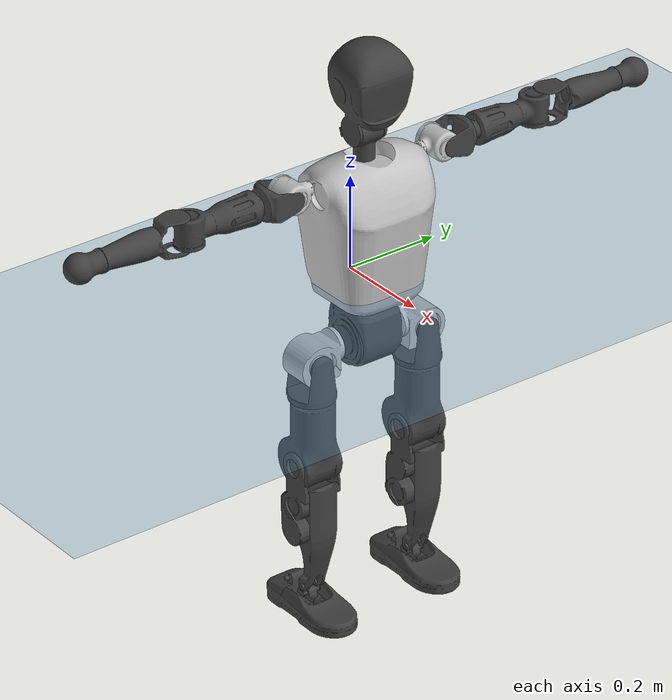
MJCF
<mujoco model="T1">
  <compiler angle="radian" assetdir="assets" balanceinertia="true" inertiafromgeom="false"/>

  <option timestep="0.005" density="1.2" viscosity="2e-05"/>

  <size nkey="1"/>

  <visual>
    <quality shadowsize="8192"/>
    <map shadowclip="0.5"/>
  </visual>

  <default>
    <default class="/">
      <joint armature="0.01" damping="0.01" frictionloss="0.1"/>
      <geom contype="0" conaffinity="0" group="1" solref="-1000 -80"/>
      <site size="0.01 0.005 0.005" group="5"/>
      <general forcelimited="true" biastype="affine" gainprm="25" biasprm="0 -25 -0.6"/>
      <default class="t1">
        <geom rgba="0.25 0.25 0.25 1"/>
        <default class="visual">
          <geom type="mesh" group="2"/>
        </default>
        <default class="collision">
          <geom group="3"/>
        </default>
        <default class="foot">
          <geom size="0.1115 0.05 0.015" type="box" condim="6" group="4" priority="1" solimp="0.015 1 0.015"/>
        </default>
        <default class="reward_collision_sphere">
          <geom group="5" rgba="1 0 0 1"/>
        </default>
      </default>
    </default>
  </default>

  <asset>
    <texture type="skybox" colorspace="auto" name="//unnamed_texture_0" builtin="gradient" rgb1="0.95 0.95 0.95" rgb2="0.95 0.95 0.95" width="100" height="600"/>
    <texture type="2d" colorspace="auto" name="texplane" builtin="checker" rgb1="0.345 0.575 0.748" rgb2="0.345 0.575 0.748" markrgb="1 1 1" width="512" height="512"/>
    <material name="MatPlane" class="/" texture="texplane" texuniform="true" texrepeat="2 2" specular="0.9"/>
    <mesh name="Trunk" class="/" file="Trunk.stl"/>
    <mesh name="H1" class="/" file="H1.stl"/>
    <mesh name="H2" class="/" file="H2.stl"/>
    <mesh name="AL1" class="/" file="AL1.stl"/>
    <mesh name="AL2" class="/" file="AL2.stl"/>
    <mesh name="AL3" class="/" file="AL3.stl"/>
    <mesh name="left_hand_link" class="/" file="left_hand_link.stl"/>
    <mesh name="AR1" class="/" file="AR1.stl"/>
    <mesh name="AR2" class="/" file="AR2.stl"/>
    <mesh name="AR3" class="/" file="AR3.stl"/>
    <mesh name="right_hand_link" class="/" file="right_hand_link.stl"/>
    <mesh name="Waist" class="/" file="Waist.stl"/>
    <mesh name="Hip_Pitch_Left" class="/" file="Hip_Pitch_Left.stl"/>
    <mesh name="Hip_Roll_Left" class="/" file="Hip_Roll_Left.stl"/>
    <mesh name="Hip_Yaw_Left" class="/" file="Hip_Yaw_Left.stl"/>
    <mesh name="Shank_Left" class="/" file="Shank_Left.stl"/>
    <mesh name="Ankle_Cross_Left" class="/" file="Ankle_Cross_Left.stl"/>
    <mesh name="left_foot_link" class="/" file="left_foot_link.stl"/>
    <mesh name="Hip_Pitch_Right" class="/" file="Hip_Pitch_Right.stl"/>
    <mesh name="Hip_Roll_Right" class="/" file="Hip_Roll_Right.stl"/>
    <mesh name="Hip_Yaw_Right" class="/" file="Hip_Yaw_Right.stl"/>
    <mesh name="Shank_Right" class="/" file="Shank_Right.stl"/>
    <mesh name="Ankle_Cross_Right" class="/" file="Ankle_Cross_Right.stl"/>
    <mesh name="right_foot_link" class="/" file="right_foot_link.stl"/>
  </asset>

  <worldbody>
    <geom name="floor" class="/" size="100 100 0.125" type="plane" group="0" material="MatPlane"/>
    <light name="toplight_shadow" class="/" pos="0 0 5" dir="0.0990148 0.0990148 -0.990148" type="directional" ambient="0.04 0.04 0.04" diffuse="0.55 0.55 0.55" specular="0.12 0.12 0.12"/>
    <light name="toplight_fill" class="/" pos="0 0 5" dir="0.0990148 0.0990148 -0.990148" type="directional" castshadow="false" ambient="0.04 0.04 0.04" diffuse="0.3 0.3 0.3" specular="0.08 0.08 0.08"/>
    <body name="trunk" childclass="t1" pos="-5.40152e-05 0.00101858 0.00103413" quat="1 3.54579e-05 -6.88711e-05 7.99229e-06">
      <inertial pos="0.0384202 0.00196901 0.113105" quat="0.999943 -0.000770243 -0.0106833 0.000306699" mass="11.5955" diaginertia="0.0165618 0.204264 0.074996"/>
      <joint name="//unnamed_joint_0" type="free" armature="0" damping="0" frictionloss="0"/>
      <geom name="//unnamed_geom_1" class="visual" rgba="0.76 0.76 0.76 1" mesh="Trunk"/>
      <geom name="//unnamed_geom_2" class="collision" size="0.0745223 0.099363 0.149045" pos="0.04254 0 0.126915" type="box"/>
      <geom name="//unnamed_geom_3" class="reward_collision_sphere" size="0.114267" pos="0.04254 0 0.105763"/>
      <geom name="//unnamed_geom_4" class="reward_collision_sphere" size="0.0149045" pos="0.04254 0.103212 0"/>
      <geom name="//unnamed_geom_5" class="reward_collision_sphere" size="0.0149045" pos="0.04254 -0.103212 0"/>
      <geom name="//unnamed_geom_6" class="reward_collision_sphere" size="0.0149045" pos="0.04254 0.129926 0.190373"/>
      <geom name="//unnamed_geom_7" class="reward_collision_sphere" size="0.0149045" pos="0.04254 -0.129926 0.190373"/>
      <site name="imu" pos="0.000919302 0.00334087 -0.00416101" size="0.0099363"/>
      <camera name="track" pos="0 -2.42853 0" quat="0.707107 0.707107 0 0" mode="trackcom"/>
      <camera name="ego_camera" pos="0.0864981 0 0.444203" quat="-0.5 -0.5 0.5 0.5"/>
      <body name="H1" pos="0.044612 -0.00197582 0.258261" quat="1 -3.43771e-05 6.55422e-05 0.000102387">
        <inertial pos="-0.000787306 0.000592186 0.0608717" quat="0.763137 -0.0206583 0.00664967 0.645872" mass="0.427744" diaginertia="4.22059e-05 0.000578427 0.000200089"/>
        <joint name="AAHead_yaw" pos="0 0 0" axis="-0.00355583 0.00287128 0.99999" stiffness="0.00155609" range="-1.57376 1.53021" armature="0.00978905" damping="0.0157448" frictionloss="0.0869298"/>
        <geom name="//unnamed_geom_8" class="visual" mesh="H1"/>
        <body name="H2" pos="-0.000946987 0.000872806 0.0636131" quat="1 -0.000120641 -1.60397e-05 0.000112831">
          <inertial pos="0.0061814 -0.000871508 0.105349" quat="0.987891 0.112778 -0.0674048 -0.0825185" mass="0.621565" diaginertia="0.00036449 0.00508649 0.0023143"/>
          <joint name="Head_pitch" pos="0 0 0" axis="0.00123329 -0.999996 -0.00265741" range="-1.2285 0.347501" armature="0.00993372" damping="0.0106468" frictionloss="0.0977492"/>
          <geom name="//unnamed_geom_9" class="visual" mesh="H2"/>
          <geom name="//unnamed_geom_10" class="collision" size="0.0794904" pos="0.00709001 0 0.116339"/>
          <geom name="//unnamed_geom_11" class="reward_collision_sphere" size="0.0894267" pos="0.01418 0 0.105763"/>
        </body>
      </body>
      <body name="AL1" pos="0.0413567 0.130245 0.232366" quat="0.999999 0.00044318 0.000526295 -0.00101992">
        <inertial pos="-0.000512973 0.0551388 0.000769526" quat="0.494959 0.498685 -0.506615 0.499671" mass="0.519669" diaginertia="0.000242123 0.00350764 0.00039053"/>
        <joint name="Left_Shoulder_Pitch" pos="0 0 0" axis="-0.00107424 0.999999 0.000131605" stiffness="0.00138976" range="-3.32304 1.25205" armature="0.00994562" damping="0.0144596" frictionloss="0.0999559"/>
        <geom name="//unnamed_geom_12" class="visual" rgba="0.76 0.76 0.76 1" mesh="AL1"/>
        <body name="AL2" pos="0.00108886 0.0595825 -0.000194868" quat="1 5.09689e-05 -3.91729e-05 -5.74003e-06">
          <inertial pos="0.00483658 0.0483366 -0.000409125" quat="0.492555 0.504611 -0.495608 0.50708" mass="0.156523" diaginertia="7.21961e-05 0.000917653 0.000241182"/>
          <joint name="Left_Shoulder_Roll" pos="0 0 0" axis="-1 0.000196701 0.000171056" range="-1.57388 1.7431" armature="0.00939874" damping="0.00881148" frictionloss="0.101672"/>
          <geom name="//unnamed_geom_13" class="visual" mesh="AL2"/>
          <body name="AL3" pos="0.000434686 0.0763652 0.000445019" quat="1 -0.000205771 0.000126376 0.00012296">
            <inertial pos="-0.00237835 0.1041 -0.000161532" quat="0.706082 0.708127 -0.001031 -0.00159938" mass="1.03094" diaginertia="0.00237417 0.0342766 0.000826793"/>
            <joint name="Left_Elbow_Pitch" pos="0 0 0" axis="0.00242336 -0.999995 0.00216789" range="-2.27298 2.31031" armature="0.01009" damping="0.0142647" frictionloss="0.100405"/>
            <geom name="//unnamed_geom_14" class="visual" mesh="AL3"/>
            <geom name="//unnamed_geom_15" class="collision" size="0.0298089 0.0745223" pos="0 0.0607132 0" quat="0.707105 0.707108 0 0" type="cylinder"/>
            <geom name="//unnamed_geom_16" class="reward_collision_sphere" size="0.0357707"/>
            <body name="left_hand_link" pos="-0.000389846 0.181178 -0.00146047" quat="1 -2.64951e-05 -1.50949e-05 2.86957e-05">
              <inertial pos="0.000495411 0.13282 0.00109706" quat="0.710248 0.703943 0.00245285 -0.00243309" mass="0.32043" diaginertia="0.00143396 0.0214412 0.000283293"/>
              <joint name="Left_Elbow_Yaw" pos="0 0 0" axis="-0.00736293 -0.0030926 0.999968" stiffness="0.00661914" range="-2.48615 -0.00873355" armature="0.00994279" damping="0.000107879" frictionloss="0.105444"/>
              <geom name="//unnamed_geom_17" class="visual" mesh="left_hand_link"/>
              <geom name="//unnamed_geom_18" class="collision" size="0.0298089 0.0869426" pos="0 0.157854 0" quat="0.707105 0.707108 0 0" type="cylinder"/>
              <geom name="//unnamed_geom_19" class="reward_collision_sphere" size="0.0496815"/>
              <geom name="//unnamed_geom_20" class="reward_collision_sphere" size="0.0347771" pos="0 0.133569 0"/>
              <geom name="//unnamed_geom_21" class="reward_collision_sphere" size="0.0347771" pos="0 0.261067 0"/>
            </body>
          </body>
        </body>
      </body>
      <body name="AR1" pos="0.0394081 -0.128408 0.231121" quat="1 9.67705e-06 0.000367413 -8.99957e-05">
        <inertial pos="-0.00104047 -0.0545913 -0.00225086" quat="0.5015 0.488649 -0.506951 0.502714" mass="0.524197" diaginertia="0.000241884 0.00334571 0.00038565"/>
        <joint name="Right_Shoulder_Pitch" pos="0 0 0" axis="-0.00439758 -0.99999 -0.000788833" stiffness="0.00628834" range="-1.22866 3.31645" armature="0.0102135" damping="0" frictionloss="0.0879142"/>
        <geom name="//unnamed_geom_22" class="visual" rgba="0.76 0.76 0.76 1" mesh="AR1"/>
        <body name="AR2" pos="-0.00192175 -0.056151 -0.000206271" quat="1 2.9515e-05 1.80636e-05 1.93556e-05">
          <inertial pos="0.002905 -0.0484876 -0.000226182" quat="0.512144 0.495588 -0.504188 0.487746" mass="0.156" diaginertia="7.085e-05 0.000902431 0.000231325"/>
          <joint name="Right_Shoulder_Roll" pos="0 0 0" axis="-0.99999 0.000100613 -0.00452374" stiffness="0.00641216" range="-1.73603 1.5771" armature="0.00993885" damping="0" frictionloss="0.0951764"/>
          <geom name="//unnamed_geom_23" class="visual" mesh="AR2"/>
          <body name="AR3" pos="-0.00114899 -0.0736413 0.00070326" quat="1 -2.0828e-05 5.37474e-06 -1.25635e-05">
            <inertial pos="-0.00131744 -0.104139 0.000534072" quat="0.707008 0.707205 -0.000769913 0.000578257" mass="0.9977" diaginertia="0.00230173 0.0327494 0.000831482"/>
            <joint name="Right_Elbow_Pitch" pos="0 0 0" axis="-0.0033164 0.99999 -0.00298888" range="-2.27662 2.24716" armature="0.00989875" damping="0.00882466" frictionloss="0.0976491"/>
            <geom name="//unnamed_geom_24" class="visual" mesh="AR3"/>
            <geom name="//unnamed_geom_25" class="collision" size="0.0298089 0.0745223" pos="0 -0.0607132 0" quat="0.707105 0.707108 0 0" type="cylinder"/>
            <geom name="//unnamed_geom_26" class="reward_collision_sphere" size="0.0357707"/>
            <body name="right_hand_link" pos="-0.00108074 -0.176896 0.00197677" quat="1 -0.000109526 -0.000168885 0.000139177">
              <inertial pos="-0.000361082 -0.132294 -0.000198528" quat="0.705111 0.709093 0.000787061 -0.00191665" mass="0.323721" diaginertia="0.00144833 0.0212427 0.000285922"/>
              <joint name="Right_Elbow_Yaw" pos="0 0 0" axis="-0.000772266 0.00265035 0.999996" range="0.00429203 2.44385" armature="0.00962051" damping="0.00708537" frictionloss="0.110278"/>
              <geom name="//unnamed_geom_27" class="visual" mesh="right_hand_link"/>
              <geom name="//unnamed_geom_28" class="collision" size="0.0298089 0.0869426" pos="0 -0.157854 0" quat="0.707105 0.707108 0 0" type="cylinder"/>
              <geom name="//unnamed_geom_29" class="reward_collision_sphere" size="0.0496815"/>
              <geom name="//unnamed_geom_30" class="reward_collision_sphere" size="0.0347771" pos="0 -0.133569 0"/>
              <geom name="//unnamed_geom_31" class="reward_collision_sphere" size="0.0347771" pos="0 -0.261067 0"/>
            </body>
          </body>
        </body>
      </body>
      <body name="Waist" pos="0.0441208 0.000399446 -0.124079" quat="1 -3.7158e-05 0.00018374 -4.07776e-05">
        <inertial pos="-0.00115498 -0.00109969 0.00738823" quat="0.983295 -0.0006083 -0.181992 0.00316844" mass="2.50569" diaginertia="0.000934103 0.0139516 0.00620502"/>
        <joint name="Waist" pos="0 0 0" axis="0.000299297 0.00665006 0.999978" stiffness="0.000938716" range="-1.56538 1.56558" armature="0.01022" damping="0.0141802" frictionloss="0.0986606"/>
        <geom name="//unnamed_geom_32" class="visual" mesh="Waist"/>
        <body name="Hip_Pitch_Left" pos="-5.79922e-05 0.127789 -0.00200226" quat="1 -6.68901e-05 9.51637e-05 -0.000128723">
          <inertial pos="0.000755794 -0.00786153 -0.0187825" quat="0.975051 0.221541 0.0138217 0.00196286" mass="1.02545" diaginertia="0.000322967 0.00386056 0.00165242"/>
          <joint name="Left_Hip_Pitch" pos="0 0 0" axis="0.00312435 0.999995 0.000193408" range="-1.79808 1.61368" armature="0.0110437" damping="0.0110701" frictionloss="0.0943012"/>
          <geom name="//unnamed_geom_33" class="visual" rgba="0.76 0.76 0.76 1" mesh="Hip_Pitch_Left"/>
          <body name="Hip_Roll_Left" pos="0.00202114 -0.000141963 -0.0226324" quat="1 -0.000347565 -0.000488746 7.28521e-05">
            <inertial pos="0.00174987 -5.67946e-05 -0.0575784" quat="0.70308 -0.0133319 -0.0131097 0.710865" mass="0.362197" diaginertia="0.000302816 0.00393261 0.00067404"/>
            <joint name="Left_Hip_Roll" pos="0 0 0" axis="-0.999981 -0.00348011 -0.00505098" stiffness="0.00277142" range="-1.56894 0.193336" armature="0.0109917" damping="0.0175415" frictionloss="0.100352"/>
            <geom name="//unnamed_geom_34" class="visual" mesh="Hip_Roll_Left"/>
            <geom name="//unnamed_geom_35" class="reward_collision_sphere" size="0.0546497"/>
            <body name="Hip_Yaw_Left" pos="-0.000283389 -0.000513528 -0.084901" quat="1 6.55011e-05 -6.80332e-05 5.20213e-05">
              <inertial pos="-0.00647064 -0.00132027 -0.0941793" quat="0.696921 -0.035529 -0.0324689 0.715531" mass="2.15487" diaginertia="0.00458772 0.0650665 0.00341368"/>
              <joint name="Left_Hip_Yaw" pos="0 0 0" axis="-0.000199649 -0.000965699 -1" stiffness="0.00115318" range="-1.00408 1.04566" armature="0.00979085" damping="0.0084359" frictionloss="0.0994565"/>
              <geom name="//unnamed_geom_36" class="visual" mesh="Hip_Yaw_Left"/>
              <geom name="//unnamed_geom_37" class="collision" size="0.0496815 0.0794904" type="cylinder"/>
              <body name="Shank_Left" pos="-0.00716704 -6.61327e-05 -0.143578" quat="1 1.11507e-05 7.70423e-05 0.000186082">
                <inertial pos="-0.00389909 0.0020771 -0.12975" quat="0.997564 0.0011282 -0.0235307 0.0656559" mass="1.64124" diaginertia="0.00622051 0.0906315 0.00243061"/>
                <joint name="Left_Knee_Pitch" pos="0 0 0" axis="-0.000125828 0.999996 -0.00265867" range="-0.0148906 2.35605" armature="0.00983432" damping="0.010274" frictionloss="0.102658"/>
                <geom name="//unnamed_geom_38" class="visual" mesh="Shank_Left"/>
                <geom name="//unnamed_geom_39" class="collision" size="0.0496815 0.0745223" pos="0 0 -0.126915" type="cylinder"/>
                <geom name="//unnamed_geom_40" class="reward_collision_sphere" size="0.064586"/>
                <body name="Ankle_Cross_Left" pos="-0.00106688 0.000146675 -0.295297" quat="1 -7.24874e-05 -2.01291e-05 0.000180581">
                  <inertial pos="-0.00167136 0.000957042 -0.00874205" quat="0.43954 0.54973 0.554542 0.443942" mass="0.072323" diaginertia="5.26914e-06 6.71318e-05 1.49149e-05"/>
                  <joint name="Left_Ankle_Pitch" pos="0 0 0" axis="0.000933032 0.999999 0.000613368" stiffness="0.000920282" range="-0.827516 0.344817" armature="0.0101468" damping="0.0163638" frictionloss="0.0944699"/>
                  <geom name="//unnamed_geom_41" class="visual" mesh="Ankle_Cross_Left"/>
                  <body name="left_foot_link" pos="0.000955869 -0.000696074 -0.0115113" quat="1 -0.000175353 -0.000160689 0.000333006">
                    <inertial pos="-0.00122684 6.46311e-05 -0.0110625" quat="0.00436572 0.619163 -0.0014117 0.785249" mass="0.661535" diaginertia="0.000461163 0.00614703 0.00291865"/>
                    <joint name="Left_Ankle_Roll" pos="0 0 0" axis="-0.999994 -0.00054809 -0.00342022" range="-0.440082 0.441365" armature="0.00993358" damping="0.0168286" frictionloss="0.0998657"/>
                    <geom name="//unnamed_geom_42" class="visual" mesh="left_foot_link"/>
                    <geom name="left_foot" class="foot" size="0.104001 0.0492692 0.0157718" pos="0.00709001 0 -0.0158644"/>
                    <geom name="//unnamed_geom_44" class="reward_collision_sphere" size="0.0516688" pos="0.00709001 0 -0.0158644"/>
                    <geom name="//unnamed_geom_45" class="reward_collision_sphere" size="0.0298089" pos="0.0673551 -0.0279281 -0.0158644"/>
                    <geom name="//unnamed_geom_46" class="reward_collision_sphere" size="0.0298089" pos="-0.0496301 -0.0279281 -0.0158644"/>
                    <site name="left_foot" class="foot" pos="0.00709001 0 -0.0158644" size="0.0099363"/>
                  </body>
                </body>
              </body>
            </body>
          </body>
        </body>
        <body name="Hip_Pitch_Right" pos="-0.00064109 -0.129568 -0.00029006" quat="1 -1.76552e-05 0.000715241 7.3669e-05">
          <inertial pos="-0.000943428 0.0102046 -0.0171152" quat="0.97295 -0.230482 0.0156839 -2.49361e-05" mass="1.01035" diaginertia="0.000325692 0.00393575 0.00161429"/>
          <joint name="Right_Hip_Pitch" pos="0 0 0" axis="0.00079696 -1 -0.000279346" range="-1.57165 1.75054" armature="0.00968688" damping="0.0113461" frictionloss="0.10045"/>
          <geom name="//unnamed_geom_47" class="visual" rgba="0.76 0.76 0.76 1" mesh="Hip_Pitch_Right"/>
          <body name="Hip_Roll_Right" pos="0.00202193 2.19187e-05 -0.0221253" quat="1 3.95719e-05 -3.26643e-06 4.57171e-05">
            <inertial pos="0.00107912 -0.00128747 -0.0563923" quat="0.7117 -0.0120702 -0.0133219 0.702253" mass="0.385081" diaginertia="0.000312264 0.00411788 0.000684019"/>
            <joint name="Right_Hip_Roll" pos="0 0 0" axis="-0.999991 -0.0022758 -0.00356989" stiffness="0.000893378" range="-0.1518 1.58866" armature="0.00990332" damping="0.00692713" frictionloss="0.0973229"/>
            <geom name="//unnamed_geom_48" class="visual" mesh="Hip_Roll_Right"/>
            <geom name="//unnamed_geom_49" class="reward_collision_sphere" size="0.0546497"/>
            <body name="Hip_Yaw_Right" pos="0.00121775 0.000855448 -0.0874195" quat="1 6.0681e-05 4.0119e-05 -0.00010919">
              <inertial pos="-0.00516476 -0.000179046 -0.0966357" quat="0.715716 -0.0363698 -0.0334039 0.696643" mass="2.09328" diaginertia="0.00458318 0.0660366 0.00339482"/>
              <joint name="Right_Hip_Yaw" pos="0 0 0" axis="-0.00897115 0.0128537 -0.999877" stiffness="0.00451912" range="-0.998677 0.993233" armature="0.0107929" damping="0" frictionloss="0.098925"/>
              <geom name="//unnamed_geom_50" class="visual" mesh="Hip_Yaw_Right"/>
              <geom name="//unnamed_geom_51" class="collision" size="0.0496815 0.0794904" type="cylinder"/>
              <body name="Shank_Right" pos="-0.00870837 -0.00078851 -0.140198" quat="1 -4.66507e-05 6.1984e-05 3.76156e-05">
                <inertial pos="-0.00473085 -0.000609825 -0.131013" quat="0.999263 -0.00187242 -0.0250129 -0.0290711" mass="1.81286" diaginertia="0.00656698 0.095343 0.00267293"/>
                <joint name="Right_Knee_Pitch" pos="0 0 0" axis="-0.000300822 -1 -0.000548458" range="-2.2992 -0.0185272" armature="0.011091" damping="0.0119063" frictionloss="0.100143"/>
                <geom name="//unnamed_geom_52" class="visual" mesh="Shank_Right"/>
                <geom name="//unnamed_geom_53" class="collision" size="0.0496815 0.0745223" pos="0 0 -0.126915" type="cylinder"/>
                <geom name="//unnamed_geom_54" class="reward_collision_sphere" size="0.064586"/>
                <body name="Ankle_Cross_Right" pos="0.000259973 -0.00128852 -0.297079" quat="1 -6.18899e-06 1.12796e-05 -5.30215e-06">
                  <inertial pos="-0.00227676 -7.12333e-05 -0.00836385" quat="0.443286 0.550735 0.547935 0.447164" mass="0.0707138" diaginertia="5.23602e-06 6.80694e-05 1.48117e-05"/>
                  <joint name="Right_Ankle_Pitch" pos="0 0 0" axis="-0.0014274 -0.999999 0.000555587" range="-0.383621 0.832784" armature="0.00988695" damping="0.0104565" frictionloss="0.10222"/>
                  <geom name="//unnamed_geom_55" class="visual" mesh="Ankle_Cross_Right"/>
                  <body name="right_foot_link" pos="0.00232327 -0.00111845 -0.0126685" quat="1 3.99136e-06 1.05563e-05 7.67935e-06">
                    <inertial pos="-0.00243887 0.000481022 -0.00946653" quat="0.000414231 0.620971 3.46258e-05 0.783833" mass="0.674442" diaginertia="0.000482982 0.00621957 0.00291811"/>
                    <joint name="Right_Ankle_Roll" pos="0 0 0" axis="-0.999999 -0.00117109 0.00061647" range="-0.483723 0.438721" armature="0.0101684" damping="0" frictionloss="0.100126"/>
                    <geom name="//unnamed_geom_56" class="visual" mesh="right_foot_link"/>
                    <geom name="right_foot" class="foot" size="0.100104 0.0468748 0.0154004" pos="0.00709001 0 -0.0158644"/>
                    <geom name="//unnamed_geom_58" class="reward_collision_sphere" size="0.0397452"/>
                    <geom name="//unnamed_geom_59" class="reward_collision_sphere" size="0.0298089" pos="0.00709001 0 -0.0158644"/>
                    <geom name="//unnamed_geom_60" class="reward_collision_sphere" size="0.0298089" pos="0.0673551 0.0279281 -0.0158644"/>
                    <geom name="//unnamed_geom_61" class="reward_collision_sphere" size="0.0298089" pos="-0.0496301 0.0279281 -0.0158644"/>
                    <site name="right_foot" class="foot" pos="0.00709001 0 -0.0158644" size="0.0099363"/>
                  </body>
                </body>
              </body>
            </body>
          </body>
        </body>
      </body>
    </body>
  </worldbody>

  <contact>
    <pair class="/" geom1="floor" geom2="left_foot" name="//unnamed_contact_0"/>
    <pair class="/" geom1="floor" geom2="right_foot" name="//unnamed_contact_1"/>
  </contact>

  <actuator>
    <general name="AAHead_yaw" class="/" joint="AAHead_yaw" forcerange="-6.70762 6.70762" gainprm="24.331" biasprm="0 -24.331 -0.581086"/>
    <general name="Head_pitch" class="/" joint="Head_pitch" forcerange="-6.9722 6.9722" gainprm="24.331" biasprm="0 -24.331 -0.581086"/>
    <general name="Left_Shoulder_Pitch" class="/" joint="Left_Shoulder_Pitch" forcerange="-17.8383 17.8383" gainprm="24.331" biasprm="0 -24.331 -0.581086"/>
    <general name="Left_Shoulder_Roll" class="/" joint="Left_Shoulder_Roll" forcerange="-18.4509 18.4509" gainprm="24.331" biasprm="0 -24.331 -0.581086"/>
    <general name="Left_Elbow_Pitch" class="/" joint="Left_Elbow_Pitch" forcerange="-18.0205 18.0205" gainprm="24.331" biasprm="0 -24.331 -0.581086"/>
    <general name="Left_Elbow_Yaw" class="/" joint="Left_Elbow_Yaw" forcerange="-18.724 18.724" gainprm="24.331" biasprm="0 -24.331 -0.581086"/>
    <general name="Right_Shoulder_Pitch" class="/" joint="Right_Shoulder_Pitch" forcerange="-17.2558 17.2558" gainprm="24.331" biasprm="0 -24.331 -0.581086"/>
    <general name="Right_Shoulder_Roll" class="/" joint="Right_Shoulder_Roll" forcerange="-18.0872 18.0872" gainprm="24.331" biasprm="0 -24.331 -0.581086"/>
    <general name="Right_Elbow_Pitch" class="/" joint="Right_Elbow_Pitch" forcerange="-19.3484 19.3484" gainprm="24.331" biasprm="0 -24.331 -0.581086"/>
    <general name="Right_Elbow_Yaw" class="/" joint="Right_Elbow_Yaw" forcerange="-17.0768 17.0768" gainprm="24.331" biasprm="0 -24.331 -0.581086"/>
    <general name="Waist" class="/" joint="Waist" forcerange="-28.7463 28.7463" gainprm="24.331" biasprm="0 -24.331 -0.581086"/>
    <general name="Left_Hip_Pitch" class="/" joint="Left_Hip_Pitch" forcerange="-44.5567 44.5567" gainprm="24.331" biasprm="0 -24.331 -0.581086"/>
    <general name="Left_Hip_Roll" class="/" joint="Left_Hip_Roll" forcerange="-31.0125 31.0125" gainprm="24.331" biasprm="0 -24.331 -0.581086"/>
    <general name="Left_Hip_Yaw" class="/" joint="Left_Hip_Yaw" forcerange="-28.2685 28.2685" gainprm="24.331" biasprm="0 -24.331 -0.581086"/>
    <general name="Left_Knee_Pitch" class="/" joint="Left_Knee_Pitch" forcerange="-59.7039 59.7039" gainprm="24.331" biasprm="0 -24.331 -0.581086"/>
    <general name="Left_Ankle_Pitch" class="/" joint="Left_Ankle_Pitch" forcerange="-20.1133 20.1133" gainprm="24.331" biasprm="0 -24.331 -0.581086"/>
    <general name="Left_Ankle_Roll" class="/" joint="Left_Ankle_Roll" forcerange="-15.9126 15.9126" gainprm="24.331" biasprm="0 -24.331 -0.581086"/>
    <general name="Right_Hip_Pitch" class="/" joint="Right_Hip_Pitch" forcerange="-44.7067 44.7067" gainprm="24.331" biasprm="0 -24.331 -0.581086"/>
    <general name="Right_Hip_Roll" class="/" joint="Right_Hip_Roll" forcerange="-29.3863 29.3863" gainprm="24.331" biasprm="0 -24.331 -0.581086"/>
    <general name="Right_Hip_Yaw" class="/" joint="Right_Hip_Yaw" forcerange="-32.4065 32.4065" gainprm="24.331" biasprm="0 -24.331 -0.581086"/>
    <general name="Right_Knee_Pitch" class="/" joint="Right_Knee_Pitch" forcerange="-59.5452 59.5452" gainprm="24.331" biasprm="0 -24.331 -0.581086"/>
    <general name="Right_Ankle_Pitch" class="/" joint="Right_Ankle_Pitch" forcerange="-20.1786 20.1786" gainprm="24.331" biasprm="0 -24.331 -0.581086"/>
    <general name="Right_Ankle_Roll" class="/" joint="Right_Ankle_Roll" forcerange="-14.9299 14.9299" gainprm="24.331" biasprm="0 -24.331 -0.581086"/>
  </actuator>

  <sensor>
    <gyro site="imu" name="imu_angular_velocity"/>
    <velocimeter site="imu" name="imu_linear_velocity"/>
    <framelinvel objtype="site" objname="left_foot" name="left_foot_global_linear_velocity"/>
    <framelinvel objtype="site" objname="right_foot" name="right_foot_global_linear_velocity"/>
  </sensor>

  <keyframe>
    <key name="home" qpos="0 0 0.6385 1 0 0 0 0 0 0 1.4 0 -0.4 0 -1.4 0 0.4 0 -0.4 0 0 0.8 -0.4 0 0.4 0 0 -0.8 0.4 0"/>
  </keyframe>
</mujoco>
